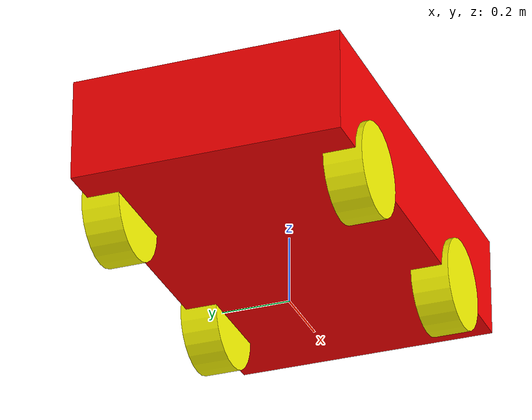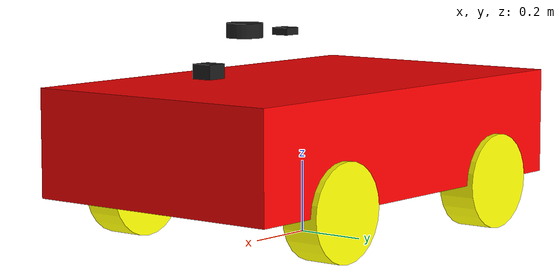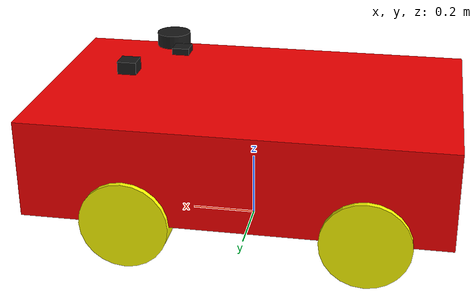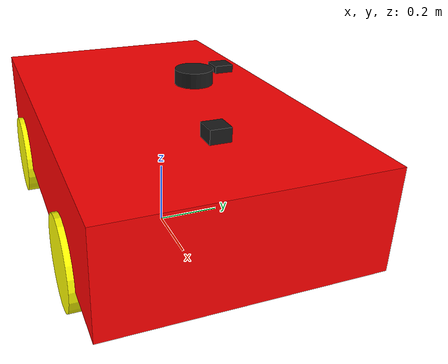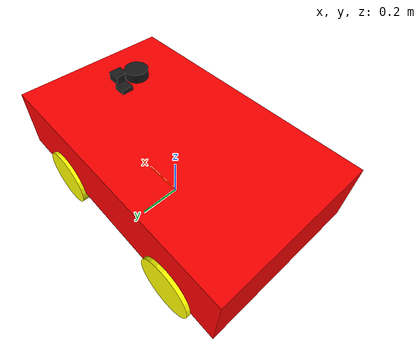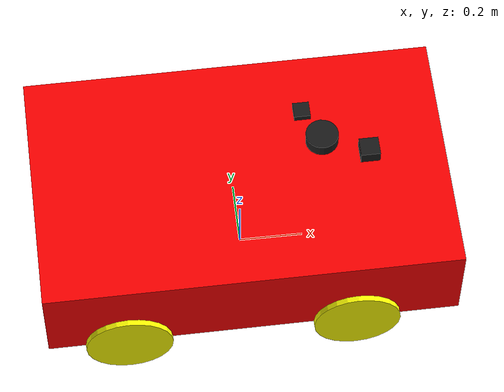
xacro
<?xml version="1.0"?>
<robot name="henes_t870" xmlns:xacro="http://www.ros.org/wiki/xacro">

  <!-- ===== Geometry (Henes T870) ===== -->
  <xacro:property name="body_x" value="1.28"/>
  <xacro:property name="body_y" value="0.775"/>
  <xacro:property name="body_z" value="0.30"/>

  <xacro:property name="wheel_r"   value="0.135"/>
  <xacro:property name="wheel_len" value="0.11"/>

  <xacro:property name="front_axle_x" value="0.32"/>
  <xacro:property name="rear_axle_x"  value="-0.39"/>
  <xacro:property name="track_width"  value="0.70"/>
  <xacro:property name="wheel_y"      value="${track_width/2.0}"/>

  <!-- base_footprint(z=0) 기준 배치 -->
  <xacro:property name="body_center_z" value="${wheel_r + body_z/2.0}"/>
  <xacro:property name="wheel_z_offset" value="${wheel_r - body_center_z}"/>

  <!-- body collision 슬림 -->
  <xacro:property name="body_collision_y_margin" value="0.02"/>
  <xacro:property name="body_collision_y" value="${ 2*( wheel_y - wheel_len/2.0 - body_collision_y_margin ) }"/>

  <!-- ===== Materials ===== -->
  <material name="mat_red">    <color rgba="1 0 0 1"/></material>
  <material name="mat_yellow"> <color rgba="1 1 0 1"/></material>
  <material name="mat_black">  <color rgba="0.1 0.1 0.1 1"/></material>

  <!-- ===== Mass/Inertia ===== -->
  <xacro:property name="m_body"  value="12.0"/>
  <xacro:property name="m_wheel" value="0.8"/>

  <xacro:property name="Ixx_body" value="${(1.0/12.0)*m_body*(body_y*body_y + body_z*body_z)}"/>
  <xacro:property name="Iyy_body" value="${(1.0/12.0)*m_body*(body_x*body_x + body_z*body_z)}"/>
  <xacro:property name="Izz_body" value="${(1.0/12.0)*m_body*(body_x*body_x + body_y*body_y)}"/>

  <xacro:property name="I_long" value="${(1.0/12.0)*m_wheel*(3.0*wheel_r*wheel_r + wheel_len*wheel_len)}"/>
  <xacro:property name="I_spin" value="${0.5*m_wheel*wheel_r*wheel_r}"/>

  <xacro:macro name="inertia_wheel">
    <inertial>
      <origin xyz="0 0 0" rpy="0 0 0"/>
      <mass value="${m_wheel}"/>
      <inertia ixx="${I_long}" ixy="0" ixz="0" iyy="${I_spin}" iyz="0" izz="${I_long}"/>
    </inertial>
  </xacro:macro>

  <!-- Gazebo 추가설정 -->
  <xacro:include filename="$(find mobile_robot)/model/robot.gazebo"/>
  <xacro:add_gz/>

  <!-- ===== Frames ===== -->
  <link name="base_footprint"/>
  <joint name="body_fixed" type="fixed">
    <parent link="base_footprint"/>
    <child  link="body_link"/>
    <origin xyz="0 0 ${body_center_z}" rpy="0 0 0"/>
  </joint>

  <!-- ===== Body ===== -->
  <link name="body_link">
    <visual>
      <origin xyz="0 0 0" rpy="0 0 0"/>
      <geometry><box size="${body_x} ${body_y} ${body_z}"/></geometry>
      <material name="mat_red"/>
    </visual>
    <collision>
      <origin xyz="0 0 0" rpy="0 0 0"/>
      <geometry><box size="${body_x} ${body_collision_y} ${body_z}"/></geometry>
    </collision>
    <inertial>
      <origin xyz="0 0 0" rpy="0 0 0"/>
      <mass value="${m_body}"/>
      <inertia ixx="${Ixx_body}" ixy="0" ixz="0" iyy="${Iyy_body}" iyz="0" izz="${Izz_body}"/>
    </inertial>
  </link>

  <!-- ===== Rear Wheels (as before) ===== -->
  <joint name="wheel1_joint" type="continuous">
    <parent link="body_link"/><child link="wheel1_link"/>
    <origin xyz="${rear_axle_x} -${wheel_y} ${wheel_z_offset}" rpy="0 0 0"/>
    <axis xyz="0 1 0"/><limit effort="1000" velocity="1000"/><dynamics damping="2.0" friction="0.0"/>
  </joint>
  <link name="wheel1_link">
    <visual><origin xyz="0 0 0" rpy="1.570795 0 0"/><geometry><cylinder radius="${wheel_r}" length="${wheel_len}"/></geometry><material name="mat_yellow"/></visual>
    <collision><origin xyz="0 0 0" rpy="1.570795 0 0"/><geometry><cylinder radius="${wheel_r}" length="${wheel_len}"/></geometry></collision>
    <xacro:inertia_wheel/>
  </link>

  <joint name="wheel2_joint" type="continuous">
    <parent link="body_link"/><child link="wheel2_link"/>
    <origin xyz="${rear_axle_x} ${wheel_y} ${wheel_z_offset}" rpy="0 0 0"/>
    <axis xyz="0 1 0"/><limit effort="1000" velocity="1000"/><dynamics damping="2.0" friction="0.0"/>
  </joint>
  <link name="wheel2_link">
    <visual><origin xyz="0 0 0" rpy="1.570795 0 0"/><geometry><cylinder radius="${wheel_r}" length="${wheel_len}"/></geometry><material name="mat_yellow"/></visual>
    <collision><origin xyz="0 0 0" rpy="1.570795 0 0"/><geometry><cylinder radius="${wheel_r}" length="${wheel_len}"/></geometry></collision>
    <xacro:inertia_wheel/>
  </link>

  <!-- ===== Front Wheels with Steering ===== -->
  <!-- FR knuckle (스티어링 허브) -->
  <link name="fr_knuckle_link">
    <!-- 작은 실린더(장식/충돌) -->
    <visual>
      <origin xyz="0 0 0" rpy="0 0 0"/>
      <geometry><cylinder radius="0.03" length="0.06"/></geometry>
      <material name="mat_black"/>
    </visual>
    <collision>
      <origin xyz="0 0 0" rpy="0 0 0"/>
      <geometry><cylinder radius="0.03" length="0.06"/></geometry>
    </collision>
    <!-- 가벼운 관성(실린더 근사) -->
    <inertial>
      <origin xyz="0 0 0" rpy="0 0 0"/>
      <mass value="0.2"/>
      <inertia ixx="1.05e-4" ixy="0" ixz="0" iyy="1.05e-4" iyz="0" izz="9.0e-5"/>
    </inertial>
  </link>

  <joint name="fr_steer_joint" type="revolute">
    <parent link="body_link"/>
    <child  link="fr_knuckle_link"/>
    <origin xyz="${front_axle_x} -${wheel_y} ${wheel_z_offset}" rpy="0 0 0"/>
    <axis xyz="0 0 1"/>
    <limit lower="-0.628" upper="0.628" effort="120" velocity="2.0"/>
    <dynamics damping="0.4"/>
  </joint>

  <joint name="fr_wheel_joint" type="continuous">
    <parent link="fr_knuckle_link"/>
    <child  link="wheel3_link"/>
    <origin xyz="0 0 0" rpy="0 0 0"/>
    <axis xyz="0 1 0"/>
    <limit effort="1000" velocity="1000"/><dynamics damping="2.0" friction="0.0"/>
  </joint>

  <link name="wheel3_link">
    <visual><origin xyz="0 0 0" rpy="1.570795 0 0"/><geometry><cylinder radius="${wheel_r}" length="${wheel_len}"/></geometry><material name="mat_yellow"/></visual>
    <collision><origin xyz="0 0 0" rpy="1.570795 0 0"/><geometry><cylinder radius="${wheel_r}" length="${wheel_len}"/></geometry></collision>
    <xacro:inertia_wheel/>
  </link>

  <!-- FL knuckle -->
  <link name="fl_knuckle_link">
    <visual>
      <origin xyz="0 0 0" rpy="0 0 0"/>
      <geometry><cylinder radius="0.03" length="0.06"/></geometry>
      <material name="mat_black"/>
    </visual>
    <collision>
      <origin xyz="0 0 0" rpy="0 0 0"/>
      <geometry><cylinder radius="0.03" length="0.06"/></geometry>
    </collision>
    <inertial>
      <origin xyz="0 0 0" rpy="0 0 0"/>
      <mass value="0.2"/>
      <inertia ixx="1.05e-4" ixy="0" ixz="0" iyy="1.05e-4" iyz="0" izz="9.0e-5"/>
    </inertial>
  </link>

  <joint name="fl_steer_joint" type="revolute">
    <parent link="body_link"/>
    <child  link="fl_knuckle_link"/>
    <origin xyz="${front_axle_x} ${wheel_y} ${wheel_z_offset}" rpy="0 0 0"/>
    <axis xyz="0 0 1"/>
    <limit lower="-0.628" upper="0.628" effort="120" velocity="2.0"/>
    <dynamics damping="0.4"/>
  </joint>

  <joint name="fl_wheel_joint" type="continuous">
    <parent link="fl_knuckle_link"/>
    <child  link="wheel4_link"/>
    <origin xyz="0 0 0" rpy="0 0 0"/>
    <axis xyz="0 1 0"/>
    <limit effort="1000" velocity="1000"/><dynamics damping="2.0" friction="0.0"/>
  </joint>

  <link name="wheel4_link">
    <visual><origin xyz="0 0 0" rpy="1.570795 0 0"/><geometry><cylinder radius="${wheel_r}" length="${wheel_len}"/></geometry><material name="mat_yellow"/></visual>
    <collision><origin xyz="0 0 0" rpy="1.570795 0 0"/><geometry><cylinder radius="${wheel_r}" length="${wheel_len}"/></geometry></collision>
    <xacro:inertia_wheel/>
  </link>

  <!-- LiDAR -->
  <link name="lidar_link">
    <visual><geometry><cylinder radius="0.05" length="0.04"/></geometry><material name="mat_black"/></visual>
    <collision><geometry><cylinder radius="0.05" length="0.04"/></geometry></collision>
    <inertial><mass value="0.1"/><inertia ixx="1e-4" ixy="0" ixz="0" iyy="1e-4" iyz="0" izz="1e-4"/></inertial>
  </link>
  <joint name="lidar_joint" type="fixed">
    <parent link="body_link"/><child link="lidar_link"/>
    <origin xyz="0.25 0 0.30" rpy="0 0 0"/>
  </joint>

    <!-- ===== IMU (link + fixed joint) ===== -->
  <link name="imu_link">
    <visual>
      <origin xyz="0 0 0" rpy="0 0 0"/>
      <geometry><box size="0.05 0.05 0.02"/></geometry>
      <material name="mat_black"/>
    </visual>
    <collision>
      <origin xyz="0 0 0" rpy="0 0 0"/>
      <geometry><box size="0.05 0.05 0.02"/></geometry>
    </collision>
    <!-- 작은 질량/관성: URDF->SDF 변환 시 링크/조인트 드랍 방지 -->
    <inertial>
      <origin xyz="0 0 0" rpy="0 0 0"/>
      <mass value="0.05"/>
      <inertia ixx="1e-5" ixy="0" ixz="0" iyy="1e-5" iyz="0" izz="1e-5"/>
    </inertial>
  </link>

  <joint name="imu_joint" type="fixed">
    <parent link="body_link"/>
    <child  link="imu_link"/>
    <!-- 바디 중앙 근처에 부착 -->
    <origin xyz="0 0 0.10" rpy="0 0 0"/>
  </joint>

    <!-- ===== Camera (front RGB) ===== -->
  <link name="camera_link">
    <visual>
      <origin xyz="0 0 0" rpy="0 0 0"/>
      <geometry><box size="0.06 0.06 0.04"/></geometry>
      <material name="mat_black"/>
    </visual>
    <collision>
      <origin xyz="0 0 0" rpy="0 0 0"/>
      <geometry><box size="0.06 0.06 0.04"/></geometry>
    </collision>
    <!-- URDF->SDF 변환 시 드랍 방지용 관성 -->
    <inertial>
      <origin xyz="0 0 0" rpy="0 0 0"/>
      <mass value="0.08"/>
      <inertia ixx="1.5e-5" ixy="0" ixz="0" iyy="1.5e-5" iyz="0" izz="1.5e-5"/>
    </inertial>
  </link>

  <joint name="camera_joint" type="fixed">
    <parent link="body_link"/>
    <child  link="camera_link"/>
    <!-- 차체 전면 상단 근처 -->
    <origin xyz="0.40 0.00 0.20" rpy="0 0 0"/>
  </joint>

    <!-- ===== GPS (NavSat) ===== -->
  <link name="gps_link">
    <visual>
      <origin xyz="0 0 0" rpy="0 0 0"/>
      <geometry><box size="0.05 0.05 0.02"/></geometry>
      <material name="mat_black"/>
    </visual>
    <collision>
      <origin xyz="0 0 0" rpy="0 0 0"/>
      <geometry><box size="0.05 0.05 0.02"/></geometry>
    </collision>
    <!-- URDF->SDF 드랍 방지용 최소 관성 -->
    <inertial>
      <origin xyz="0 0 0" rpy="0 0 0"/>
      <mass value="0.05"/>
      <inertia ixx="1e-5" ixy="0" ixz="0" iyy="1e-5" iyz="0" izz="1e-5"/>
    </inertial>
  </link>

  <joint name="gps_joint" type="fixed">
    <parent link="body_link"/>
    <child  link="gps_link"/>
    <!-- 지붕 근처(카메라와 간섭 없게 약간 뒤로) -->
    <origin xyz="0.20 0.10 0.30" rpy="0 0 0"/>
  </joint>

</robot>
